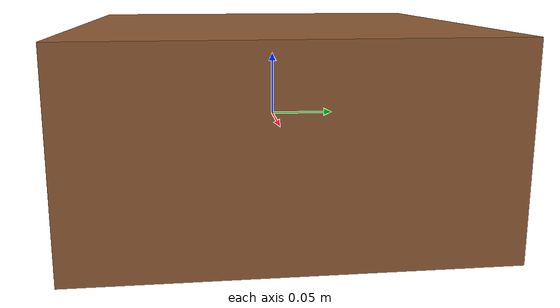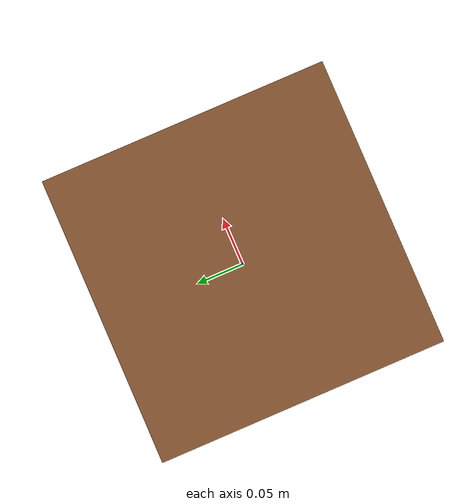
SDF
<?xml version="1.0"?>
<sdf version="1.6">
  <model name="target_table">
    <static>true</static>
    <link name="link">
      <visual name="visual">
        <geometry><box><size>0.30 0.30 0.15</size></box></geometry>
        <material>
          <ambient>0.55 0.35 0.20 1</ambient>
          <diffuse>0.55 0.35 0.20 1</diffuse>
        </material>
      </visual>
      <collision name="collision">
        <geometry><box><size>0.30 0.30 0.15</size></box></geometry>
      </collision>
    </link>
  </model>
</sdf>
